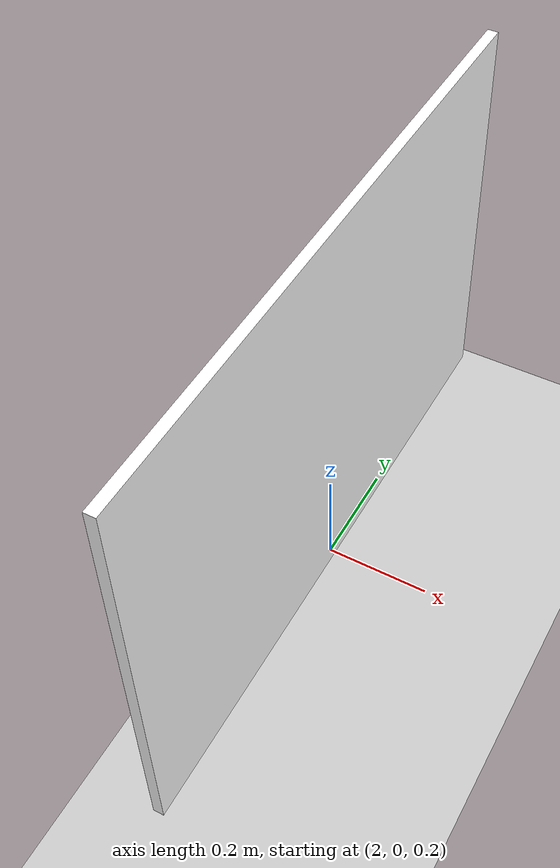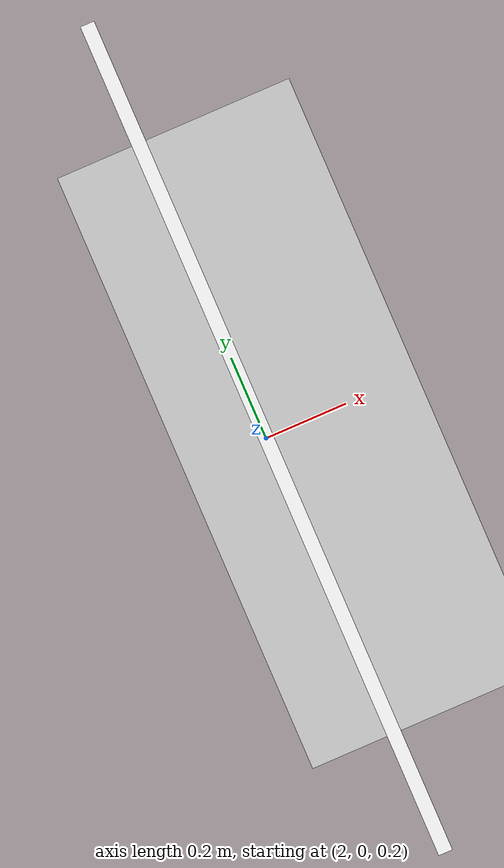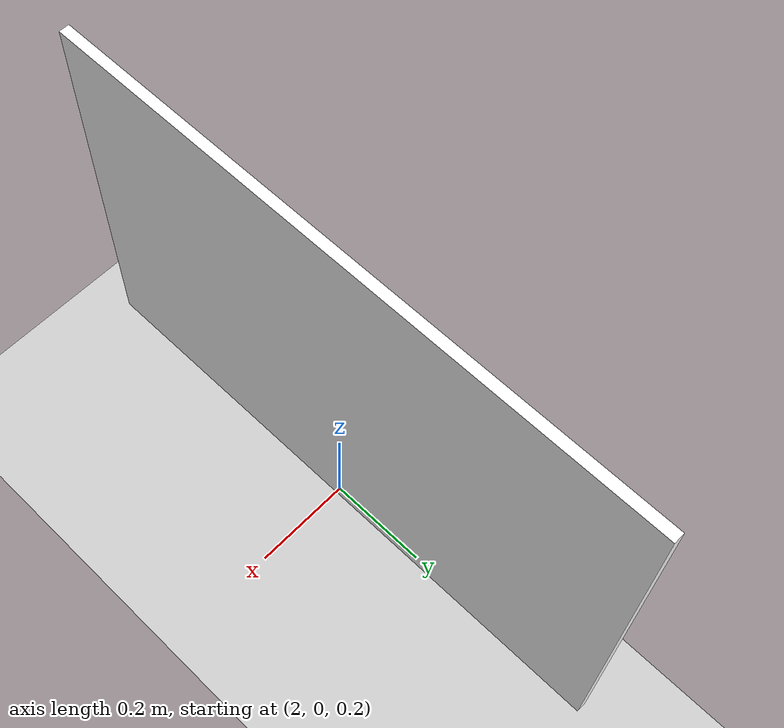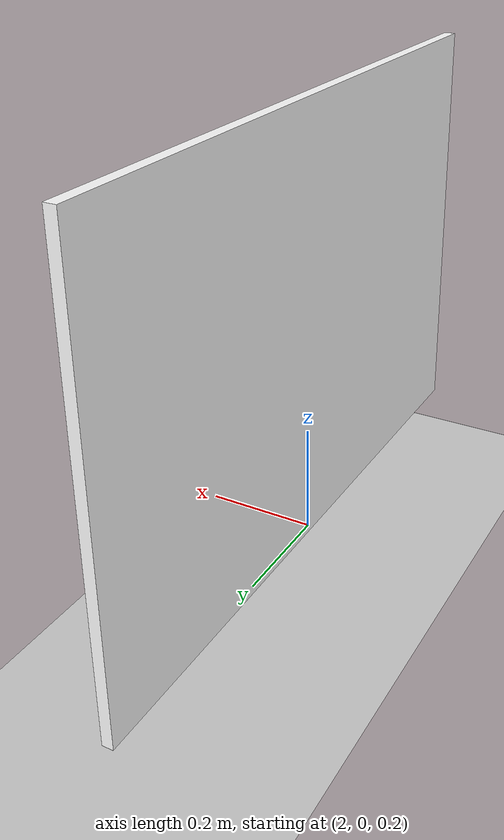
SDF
<?xml version="1.0" ?>
<sdf version="1.6">
  <world name="default">

    <model name="ground_plane">
      <static>true</static>
      <link name="link">
        <collision name="collision">
          <geometry>
            <plane>
              <normal>0 0 1</normal>
              <size>100 100</size>
            </plane>
          </geometry>
        </collision>
        <visual name="visual">
          <geometry>
            <plane>
              <normal>0 0 1</normal>
              <size>100 100</size>
            </plane>
          </geometry>
          <material>
            <ambient>0.8 0.8 0.8 1</ambient>
            <diffuse>0.8 0.8 0.8 1</diffuse>
            <specular>0.1 0.1 0.1 1</specular>
          </material>
        </visual>
      </link>
    </model>

    <light name="sun" type="directional">
      <cast_shadows>true</cast_shadows>
      <pose>0 0 10 0 0 0</pose>
      <diffuse>0.8 0.8 0.8 1</diffuse>
      <specular>0.2 0.2 0.2 1</specular>
      <direction>-0.5 0.1 -1</direction>
    </light>

    <include>
      <uri>model://cone_poster</uri>
      <pose>2.0 0.0 0.6 0 0 1.57079632679</pose>
    </include>

  </world>
</sdf>

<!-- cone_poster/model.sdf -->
<sdf version="1.8">
  <model name="cone_poster">
    <static>true</static>

    <link name="link">

      <!-- Visual tipo "panel" (más robusto que plane con texturas en gz-sim) -->
      <visual name="poster_visual">

        <!-- Panel fino -->
        <geometry>
          <box>
            <size>1.2 0.02 0.8</size>
          </box>
        </geometry>

        <!-- Orientación: que mire al robot (frontal).
             Con yaw=0 y pose en world (2,0,0.6) suele bastar.
             Si lo ves de canto, prueba yaw=1.5708 en el world. -->
        <pose>0 0 0 0 0 0</pose>

        <material>
          <double_sided>true</double_sided>

          <!-- Fallback clásico (evita negro si PBR falla) -->
          <ambient>1 1 1 1</ambient>
          <diffuse>1 1 1 1</diffuse>
          <specular>0.05 0.05 0.05 1</specular>

          <!-- PBR -->
          <pbr>
            <metal>
              <albedo_map>model://cone_poster/materials/textures/cone.png</albedo_map>
              <metalness>0.0</metalness>
              <roughness>1.0</roughness>
            </metal>
          </pbr>
        </material>

      </visual>

      <!-- Collision opcional (no hace falta, pero ayuda a depurar) -->
      <collision name="poster_collision">
        <geometry>
          <box>
            <size>1.2 0.02 0.8</size>
          </box>
        </geometry>
      </collision>

    </link>
  </model>
</sdf>
